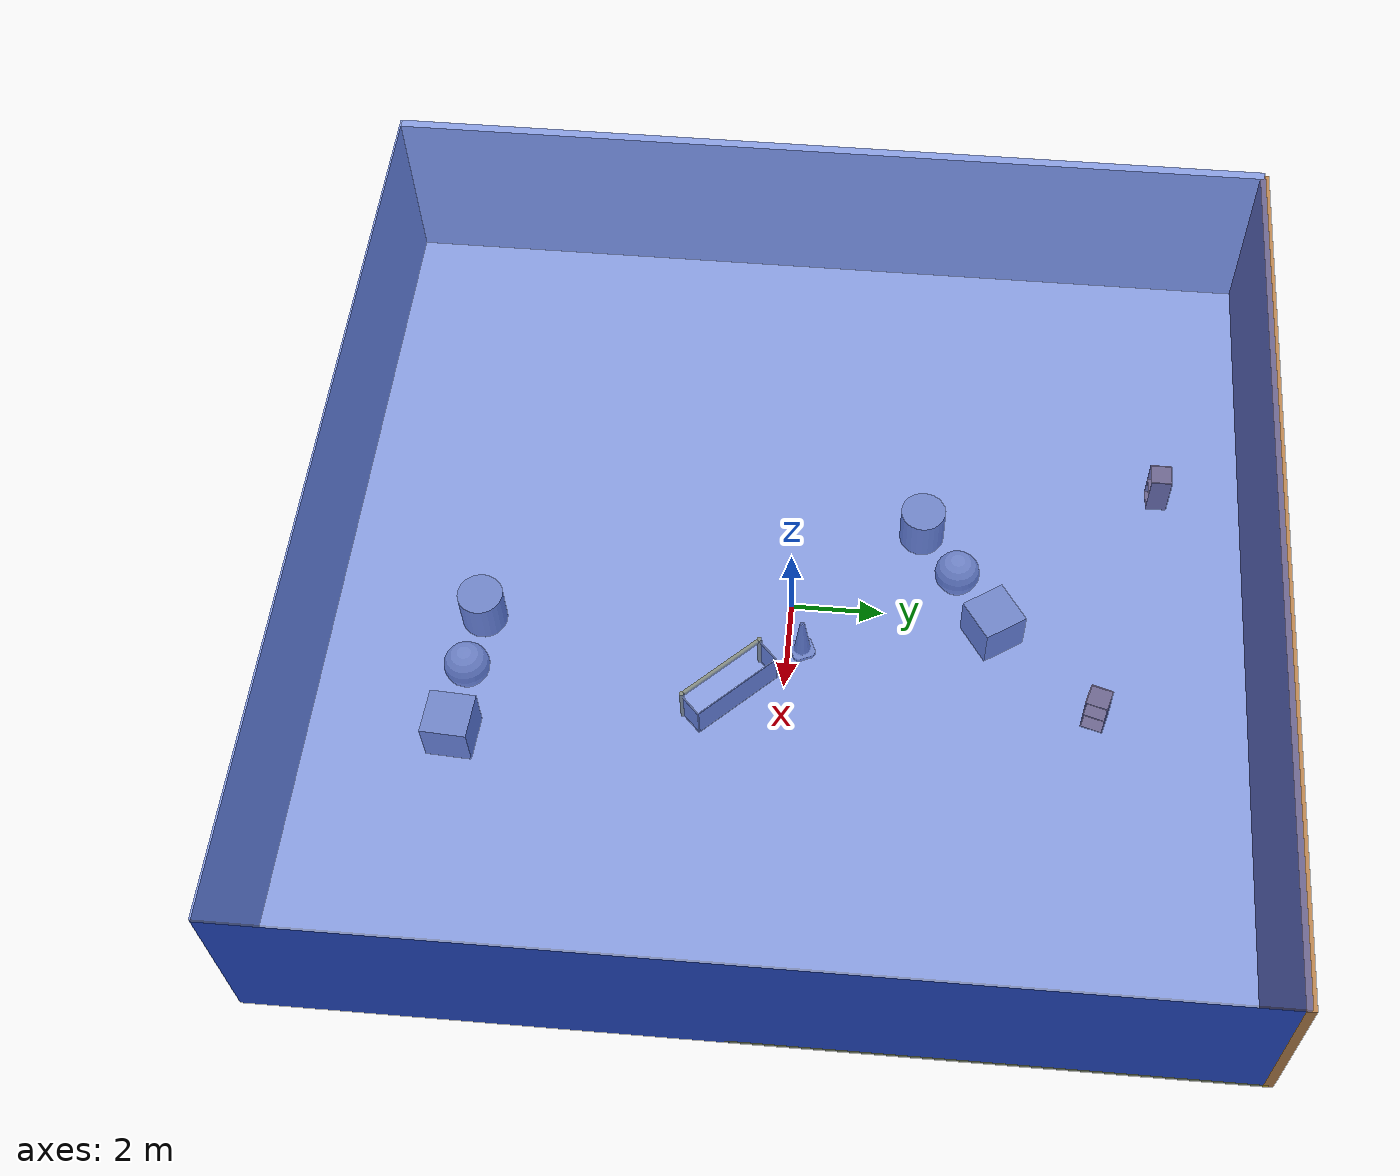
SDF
<sdf version="1.4">
 <world name="default">
  <physics type="ode">
   <max_step_size>0.001</max_step_size>
   <real_time_factor>1</real_time_factor>
   <real_time_update_rate>1000</real_time_update_rate>
   <gravity>0 0 -9.8</gravity>
  </physics>
  <scene><ambient>0.4 0.4 0.4 1</ambient><background>0.7 0.7 0.7 1</background><shadows>1</shadows></scene>
  <model name="Surrounding">
   <static>1</static>
   <link name="Ceiling">
    <collision name="Ceiling_Collision"><geometry><box><size>20 20 0.1</size></box></geometry></collision>
    <visual name="Ceiling_Visual">
     <geometry><box><size>20 20 0.1</size></box></geometry>
     <material>
      <script><uri>file://media/materials/scripts/gazebo.material</uri><name>Gazebo/BlueTransparent</name></script>
     </material>
    </visual>
    <pose>0 0 4.05 0 0 0</pose>
   </link>
   <link name="Wall_South">
    <collision name="Wall_South_Collision">
     <geometry><box><size>20 0 4</size></box></geometry>
     <pose>0 0 2 0 -0 0</pose>
    </collision>
    <visual name="Wall_South_Visual">
     <pose>0 0 2 0 -0 0</pose>
     <geometry><box><size>20 0 4</size></box></geometry>
     <material>
      <script><uri>file://media/materials/scripts/gazebo.material</uri><name>Gazebo/WhiteGlow</name></script>
     </material>
    </visual>
    <velocity_decay><linear>0</linear><angular>0</angular></velocity_decay>
    <pose>0 -10 0 0 -0 0</pose>
   </link>
   <link name="Wall_East">
    <collision name="Wall_21_Collision">
     <geometry><box><size>20 0 4</size></box></geometry>
     <pose>0 0 2 0 -0 0</pose>
    </collision>
    <visual name="Wall_21_Visual">
     <pose>0 0 2 0 -0 0</pose>
     <geometry><box><size>20 0 4</size></box></geometry>
     <material>
      <script><uri>file://media/materials/scripts/gazebo.material</uri><name>Gazebo/BlueGlow</name></script>
     </material>
    </visual>
    <velocity_decay><linear>0</linear><angular>0</angular></velocity_decay>
    <pose>10 0 0 0 -0 1.5708</pose>
   </link>
   <link name="Wall_North">
    <collision name="Wall_22_Collision">
     <geometry><box><size>20 0.2 4</size></box></geometry>
     <pose>0 0 2 0 -0 0</pose>
    </collision>
    <visual name="Wall_22_Visual">
     <pose>0 0 2 0 -0 0</pose>
     <geometry><box><size>20 0.2 4</size></box></geometry>
     <material>
      <script><uri>file://media/materials/scripts/gazebo.material</uri><name>Gazebo/WoodPallet</name></script>
     </material>
    </visual>
    <velocity_decay><linear>0</linear><angular>0</angular></velocity_decay>
    <pose>0 10 0 0 -0 0</pose>
   </link>
   <link name="Wall_West">
    <collision name="Wall_23_Collision">
     <geometry><box><size>20 0.2 4</size></box></geometry>
     <pose>0 0 2 0 -0 0</pose>
    </collision>
    <visual name="Wall_23_Visual">
     <pose>0 0 2 0 -0 0</pose>
     <geometry><box><size>20 0.2 4</size></box></geometry>
     <material>
      <script><uri>file://media/materials/scripts/gazebo.material</uri><name>Gazebo/WhiteGlow</name></script>
     </material>
    </visual>
    <velocity_decay><linear>0</linear><angular>0</angular></velocity_decay>
    <pose>-10 0 0 0 0 -1.5708</pose>
   </link>
   <link name="Ground_link">
    <collision name="collision">
     <pose>0 0 .05 0 -0 0</pose>
     <geometry><box><size>20 20 0.1</size></box></geometry>
    </collision>
    <visual name="visual">
     <pose>0 0 .05 0 -0 0</pose>
     <geometry><box><size>20 20 0.1</size></box></geometry>
     <material>
      <script>
       <uri>file://media/materials/scripts/gazebo.material</uri>
       <name>Gazebo/YellowTransparent</name>
      </script>
     </material>
    </visual>
   </link>
   <static>1</static>
  </model>
  <spherical_coordinates>
   <surface_model>EARTH_WGS84</surface_model>
   <latitude_deg>0</latitude_deg>
   <longitude_deg>0</longitude_deg>
   <elevation>0</elevation>
   <heading_deg>0</heading_deg>
  </spherical_coordinates>
  <light name="lightball_0" type="diffuse">
   <diffuse>0.8 0.8 0.8 1</diffuse>
   <specular>0.2 0.2 0.2 1</specular>
   <attenuation>
    <range>100</range>
    <constant>0.7</constant>
    <linear>0.01</linear>
    <quadratic>0.001</quadratic>
   </attenuation>
   <direction>-0.5 0.1 -0.9</direction>
   <pose>-3.88969560598 -4.98960851431 2.26805039407 0 0 0</pose>
  </light>
  <light name="lightball_1" type="diffuse">
   <diffuse>0.8 0.8 0.8 1</diffuse>
   <specular>0.2 0.2 0.2 1</specular>
   <attenuation>
    <range>100</range>
    <constant>0.7</constant>
    <linear>0.01</linear>
    <quadratic>0.001</quadratic>
   </attenuation>
   <direction>-0.5 0.1 -0.9</direction>
   <pose>-8.21088548561 1.77330104684 1.03042122326 0 0 0</pose>
  </light>
  <include><uri>model://cabinet</uri><pose>-3.54882520237 8.00802247658 0 0 0 1.60263289417</pose></include>
  <include>
   <uri>model://textured_shapes</uri>
   <pose>-1.20867944504 3.59175799634 0 0 0 2.16148953986</pose>
  </include>
  <include>
   <uri>model://textured_shapes</uri>
   <pose>2.0438708298 -6.898515956 0 0 0 1.51213384604</pose>
  </include>
  <include>
   <uri>model://robocup_3Dsim_goal</uri>
   <pose>2.14387846209 -1.3305856296 0 0 0 0.769750043293</pose>
  </include>
  <include>
   <uri>model://construction_cone</uri>
   <pose>1.07829645626 0.313601132687 0 0 0 0.417280419586</pose>
  </include>
  <include><uri>model://cabinet</uri><pose>2.29874968362 6.64449490348 0 0 0 2.86453268813</pose></include>
 </world>
</sdf>

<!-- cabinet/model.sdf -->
<sdf version="1.5">
  <model name="cabinet">
    <static>true</static>
    <link name="cabinet_bottom_plate">
      <inertial>
        <pose>0 0 -1 0 0 0</pose>
        <inertia>
          <ixx>2.050000</ixx>
          <ixy>0</ixy>
          <ixz>0</ixz>
          <iyy>2.050000</iyy>
          <iyz>0</iyz>
          <izz>2.050000</izz>
        </inertia>
        <mass>25.000000</mass>
      </inertial>
      <collision name="cabinet_bottom_plate_geom">
        <pose>0 0 0.010000 0 0 0</pose>
        <geometry>
          <box>
            <size>0.450000 0.450000 0.020000</size>
          </box>
        </geometry>
      </collision>
      <visual name="cabinet_bottom_plate_geom_visual">
        <pose>0 0 0.010000 0 0 0</pose>
        <geometry>
          <box>
            <size>0.450000 0.450000 0.020000</size>
          </box>
        </geometry>
        <material>
          <script>
            <uri>model://media/materials/scripts/gazebo.material</uri>
            <name>Gazebo/Wood</name>
          </script>
        </material>
      </visual>
      <collision name="cabinet_bottom_plate_geom_cabinet_back_plate">
        <pose>0.235000 0 0.510000 0 0 0</pose>
        <geometry>
          <box>
            <size>0.020000 0.450000 1.020000</size>
          </box>
        </geometry>
      </collision>
      <visual name="cabinet_bottom_plate_geom_cabinet_back_plate_visual">
        <pose>0.235000 0 0.510000 0 0 0</pose>
        <geometry>
          <box>
            <size>0.020000 0.450000 1.020000</size>
          </box>
        </geometry>
        <material>
          <script>
            <uri>model://media/materials/scripts/gazebo.material</uri>
            <name>Gazebo/Wood</name>
          </script>
        </material>
      </visual>
      <collision name="cabinet_bottom_plate_geom_cabinet_left_plate">
        <pose>0 0.235000 0.510000 0 0 0</pose>
        <geometry>
          <box>
            <size>0.450000 0.020000 1.020000</size>
          </box>
        </geometry>
      </collision>
      <visual name="cabinet_bottom_plate_geom_cabinet_left_plate_visual">
        <pose>0 0.235000 0.510000 0 0 0</pose>
        <geometry>
          <box>
            <size>0.450000 0.020000 1.020000</size>
          </box>
        </geometry>
        <material>
          <script>
            <uri>model://media/materials/scripts/gazebo.material</uri>
            <name>Gazebo/Wood</name>
          </script>
        </material>
      </visual>
      <collision name="cabinet_bottom_plate_geom_cabinet_middle_plate">
        <pose>0 0 0.510000 0 0 0</pose>
        <geometry>
          <box>
            <size>0.450000 0.450000 0.020000</size>
          </box>
        </geometry>
      </collision>
      <visual name="cabinet_bottom_plate_geom_cabinet_middle_plate_visual">
        <pose>0 0 0.510000 0 0 0</pose>
        <geometry>
          <box>
            <size>0.450000 0.450000 0.020000</size>
          </box>
        </geometry>
        <material>
          <script>
            <uri>model://media/materials/scripts/gazebo.material</uri>
            <name>Gazebo/Wood</name>
          </script>
        </material>
      </visual>
      <collision name="cabinet_bottom_plate_geom_cabinet_right_plate">
        <pose>0 -0.235000 0.510000 0 0 0</pose>
        <geometry>
          <box>
            <size>0.450000 0.020000 1.020000</size>
          </box>
        </geometry>
      </collision>
      <visual name="cabinet_bottom_plate_geom_cabinet_right_plate_visual">
        <pose>0 -0.235000 0.510000 0 0 0</pose>
        <geometry>
          <box>
            <size>0.450000 0.020000 1.020000</size>
          </box>
        </geometry>
        <material>
          <script>
            <uri>model://media/materials/scripts/gazebo.material</uri>
            <name>Gazebo/Wood</name>
          </script>
        </material>
      </visual>
      <collision name="cabinet_bottom_plate_geom_cabinet_top_plate">
        <pose>0 0 1.010000 0 0 0</pose>
        <geometry>
          <box>
            <size>0.450000 0.450000 0.020000</size>
          </box>
        </geometry>
      </collision>
      <visual name="cabinet_bottom_plate_geom_cabinet_top_plate_visual">
        <pose>0 0 1.010000 0 0 0</pose>
        <geometry>
          <box>
            <size>0.450000 0.450000 0.020000</size>
          </box>
        </geometry>
        <material>
          <script>
            <uri>model://media/materials/scripts/gazebo.material</uri>
            <name>Gazebo/Wood</name>
          </script>
        </material>
      </visual>
    </link>
  </model>
</sdf>

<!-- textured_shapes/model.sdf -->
<sdf version="1.6">
  <model name="textured_shapes">
    <pose>0 0 0.5 0 0 0</pose>
    <link name="box">
      <pose>0 -1.5 0 0 0 0</pose>
      <collision name="collision">
        <geometry>
          <box>
            <size>1 1 1</size>
          </box>
        </geometry>
      </collision>
      <visual name="visual">
        <geometry>
          <box>
            <size>1 1 1</size>
          </box>
        </geometry>
        <material>
          <script>
            <uri>model://../model_source/models/textured_shapes/materials/scripts</uri>
            <uri>model://../model_source/models/textured_shapes/materials/textures</uri>
            <name>TexturedShape/Squares</name>
          </script>
        </material>
      </visual>
    </link>
    <link name="sphere">
      <collision name="collision">
        <geometry>
          <sphere>
            <radius>0.5</radius>
          </sphere>
        </geometry>
      </collision>
      <visual name="visual">
        <geometry>
          <sphere>
            <radius>0.5</radius>
          </sphere>
        </geometry>
        <material>
          <script>
            <uri>model://../model_source/models/textured_shapes/materials/scripts</uri>
            <uri>model://../model_source/models/textured_shapes/materials/textures</uri>
            <name>TexturedShape/Squares</name>
          </script>
        </material>
      </visual>
    </link>
    <link name="cylinder">
      <pose>0 1.5 0 0 0 0</pose>
      <collision name="collision">
        <geometry>
          <cylinder>
            <radius>0.5</radius>
            <length>1</length>
          </cylinder>
        </geometry>
      </collision>
      <visual name="visual">
        <geometry>
          <cylinder>
            <radius>0.5</radius>
            <length>1</length>
          </cylinder>
        </geometry>
        <material>
          <script>
            <uri>model://../model_source/models/textured_shapes/materials/scripts</uri>
            <uri>model://../model_source/models/textured_shapes/materials/textures</uri>
            <name>TexturedShape/Squares</name>
          </script>
        </material>
      </visual>
    </link>
  </model>
</sdf>

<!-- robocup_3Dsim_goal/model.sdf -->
<sdf version="1.5">
  <model name="robocup_3d_goal">
    <static>true</static>
    <link name="left_post">
      <pose>0 1.05 0.45 0 0 0</pose>
      <collision name="collision">
        <geometry>
          <cylinder>
            <radius>0.05</radius>
            <length>0.9</length>
          </cylinder>
        </geometry>
      </collision>
      <visual name="visual">
        <geometry>
          <cylinder>
            <radius>0.05</radius>
            <length>0.9</length>
          </cylinder>
        </geometry>
        <material>
          <script>
            <uri>file://media/materials/scripts/gazebo.material</uri>
            <name>Gazebo/ZincYellow</name>
          </script>
        </material>
      </visual>
    </link>
    <link name="left_support_horiz_lower">
      <pose>0.30 1.05 0.01 0 0 0</pose>
      <collision name="collision">
        <geometry>
          <box>
            <size>0.50 0.02 0.02</size>
          </box>
        </geometry>
      </collision>
      <visual name="visual">
        <geometry>
          <box>
            <size>0.50 0.02 0.02</size>
          </box>
        </geometry>
        <material>
          <script>
            <uri>file://media/materials/scripts/gazebo.material</uri>
            <name>Gazebo/White</name>
          </script>
        </material>
      </visual>
    </link>
    <link name="left_support_horiz_upper">
      <pose>0.30 1.05 0.79 0 0 0</pose>
      <collision name="collision">
        <geometry>
          <box>
            <size>0.50 0.02 0.02</size>
          </box>
        </geometry>
      </collision>
      <visual name="visual">
        <geometry>
          <box>
            <size>0.50 0.02 0.02</size>
          </box>
        </geometry>
        <material>
          <script>
            <uri>file://media/materials/scripts/gazebo.material</uri>
            <name>Gazebo/White</name>
          </script>
        </material>
      </visual>
    </link>
    <link name="left_support_vertical">
      <pose>0.56 1.05 0.4 0 1.5708 0</pose>
      <collision name="collision">
        <geometry>
          <box>
            <size>0.80 0.02 0.02</size>
          </box>
        </geometry>
      </collision>
      <visual name="visual">
        <geometry>
          <box>
            <size>0.80 0.02 0.02</size>
          </box>
        </geometry>
        <material>
          <script>
            <uri>file://media/materials/scripts/gazebo.material</uri>
            <name>Gazebo/White</name>
          </script>
        </material>
      </visual>
    </link>
    <link name="right_support_horiz_lower">
      <pose>0.30 -1.05 0.01 0 0 0</pose>
      <collision name="collision">
        <geometry>
          <box>
            <size>0.50 0.02 0.02</size>
          </box>
        </geometry>
      </collision>
      <visual name="visual">
        <geometry>
          <box>
            <size>0.50 0.02 0.02</size>
          </box>
        </geometry>
        <material>
          <script>
            <uri>file://media/materials/scripts/gazebo.material</uri>
            <name>Gazebo/White</name>
          </script>
        </material>
      </visual>
    </link>
    <link name="right_support_horiz_upper">
      <pose>0.30 -1.05 0.79 0 0 0</pose>
      <collision name="collision">
        <geometry>
          <box>
            <size>0.50 0.02 0.02</size>
          </box>
        </geometry>
      </collision>
      <visual name="visual">
        <geometry>
          <box>
            <size>0.50 0.02 0.02</size>
          </box>
        </geometry>
        <material>
          <script>
            <uri>file://media/materials/scripts/gazebo.material</uri>
            <name>Gazebo/White</name>
          </script>
        </material>
      </visual>
    </link>
    <link name="right_support_vertical">
      <pose>0.56 -1.05 0.4 0 1.5708 0</pose>
      <collision name="collision">
        <geometry>
          <box>
            <size>0.80 0.02 0.02</size>
          </box>
        </geometry>
      </collision>
      <visual name="visual">
        <geometry>
          <box>
            <size>0.80 0.02 0.02</size>
          </box>
        </geometry>
        <material>
          <script>
            <uri>file://media/materials/scripts/gazebo.material</uri>
            <name>Gazebo/White</name>
          </script>
        </material>
      </visual>
    </link>
    <link name="center_support_horiz_lower">
      <pose>0.56 0 0.01 0 1.5708 0</pose>
      <collision name="collision">
        <geometry>
          <box>
            <size>0.02 2.08 0.02</size>
          </box>
        </geometry>
      </collision>
      <visual name="visual">
        <geometry>
          <box>
            <size>0.02 2.08 0.02</size>
          </box>
        </geometry>
        <material>
          <script>
            <uri>file://media/materials/scripts/gazebo.material</uri>
            <name>Gazebo/White</name>
          </script>
        </material>
      </visual>
    </link>
    <link name="center_support_horiz_upper">
      <pose>0.56 0 0.79 0 1.5708 0</pose>
      <collision name="collision">
        <geometry>
          <box>
            <size>0.02 2.08 0.02</size>
          </box>
        </geometry>
      </collision>
      <visual name="visual">
        <geometry>
          <box>
            <size>0.02 2.08 0.02</size>
          </box>
        </geometry>
        <material>
          <script>
            <uri>file://media/materials/scripts/gazebo.material</uri>
            <name>Gazebo/White</name>
          </script>
        </material>
      </visual>
    </link>
    <link name="right_post">
      <pose>0 -1.05 0.45 0 0 0</pose>
      <collision name="collision">
        <geometry>
          <cylinder>
            <radius>0.05</radius>
            <length>0.9</length>
          </cylinder>
        </geometry>
      </collision>
      <visual name="visual">
        <geometry>
          <cylinder>
            <radius>0.05</radius>
            <length>0.9</length>
          </cylinder>
        </geometry>
        <material>
          <script>
            <uri>file://media/materials/scripts/gazebo.material</uri>
            <name>Gazebo/ZincYellow</name>
          </script>
        </material>
      </visual>
    </link>
    <link name="crossbar">
      <pose>0 0 0.85 1.57 1.57 0</pose>
      <collision name="collision">
        <geometry>
          <cylinder>
            <radius>0.05</radius>
            <length>2.0</length>
          </cylinder>
        </geometry>
      </collision>
      <visual name="visual">
        <geometry>
          <cylinder>
            <radius>0.05</radius>
            <length>2.0</length>
          </cylinder>
        </geometry>
        <material>
          <script>
            <uri>file://media/materials/scripts/gazebo.material</uri>
            <name>Gazebo/ZincYellow</name>
          </script>
        </material>
      </visual>
    </link>
    <link name="center_net">
      <pose>0.56 0 0.40 0 0 0</pose>
      <collision name="collision">
        <geometry>
          <box>
            <size>0.01 2.1 0.80</size>
          </box>
        </geometry>
      </collision>
      <visual name="visual">
        <geometry>
          <box>
            <size>0.01 2.1 0.80</size>
          </box>
        </geometry>
        <material>
          <script>
            <uri>model://../model_source/models/robocup09_spl_field/materials/scripts/</uri>
            <uri>model://../model_source/models/robocup09_spl_field/materials/textures/</uri>
            <name>RoboCup/Net</name>
          </script>
        </material>
      </visual>
    </link>
    <link name="left_net">
      <pose>0.30 1.05 0.40 0 0 0</pose>
      <collision name="collision">
        <geometry>
          <box>
            <size>0.50 0.01 0.76</size>
          </box>
        </geometry>
      </collision>
      <visual name="visual">
        <geometry>
          <box>
            <size>0.50 0.01 0.76</size>
          </box>
        </geometry>
        <material>
          <script>
            <uri>model://../model_source/models/robocup09_spl_field/materials/scripts/</uri>
            <uri>model://../model_source/models/robocup09_spl_field/materials/textures/</uri>
            <name>RoboCup/Net</name>
          </script>
        </material>
      </visual>
    </link>
    <link name="right_net">
      <pose>0.30 -1.05 0.40 0 0 0</pose>
      <collision name="collision">
        <geometry>
          <box>
            <size>0.50 0.01 0.76</size>
          </box>
        </geometry>
      </collision>
      <visual name="visual">
        <geometry>
          <box>
            <size>0.50 0.01 0.76</size>
          </box>
        </geometry>
        <material>
          <script>
            <uri>model://../model_source/models/robocup09_spl_field/materials/scripts/</uri>
            <uri>model://../model_source/models/robocup09_spl_field/materials/textures/</uri>
            <name>RoboCup/Net</name>
          </script>
        </material>
      </visual>
    </link>
  </model>
</sdf>

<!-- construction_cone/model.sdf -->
<sdf version="1.5">
  <model name="Construction Cone">
    <link name="link">
      <collision name="collision">
        <geometry>
          <mesh>
            <scale>10 10 10</scale>
            <uri>file://isr-testbed/construction_cone/meshes/construction_cone.dae</uri>
          </mesh>
        </geometry>
      </collision>
      <visual name="visual">
        <geometry>
          <mesh>
            <scale>10 10 10</scale>
            <uri>file://isr-testbed/construction_cone/meshes/construction_cone.dae</uri>
          </mesh>
        </geometry>
      </visual>
    </link>
  </model>
</sdf>
